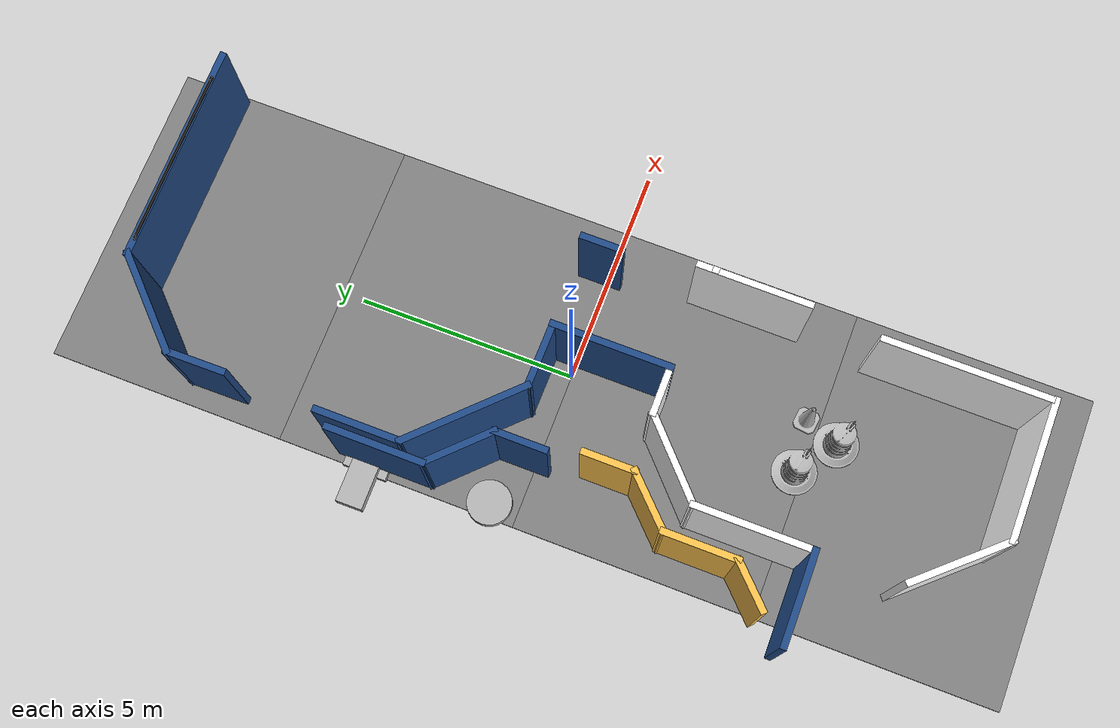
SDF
<sdf version="1.7">
 <world name="default">
  <model name="among_us_world">
   <pose>0.133216 -0.12311 0 0 -0 0</pose>
   <link name="Wall_0">
    <collision name="Wall_0_Collision">
     <geometry><box><size>5 0.15 2.5</size></box></geometry>
     <pose>0 0 1.25 0 -0 0</pose>
    </collision>
    <visual name="Wall_0_Visual">
     <pose>0 0 1.25 0 -0 0</pose>
     <geometry><box><size>5 0.15 2.5</size></box></geometry>
     <material>
      <ambient>0.12549 0.290196 0.529412 1</ambient>
      <diffuse>0.12549 0.290196 0.529412 1</diffuse>
      <specular>0.08 0.08 0.08 1</specular>
      <emissive>0 0 0 1</emissive>
      <pbr>
       <metal>
        <albedo_map>model://asphalt_plane/materials/textures/tarmac.png</albedo_map>
        <roughness>0.85</roughness>
        <metalness>0</metalness>
       </metal>
      </pbr>
     </material>
     <meta><layer>0</layer></meta>
    </visual>
    <pose>0.883234 9.56872 0 0 -0 0</pose>
   </link>
   <link name="Wall_105">
    <collision name="Wall_105_Collision">
     <geometry><box><size>1.25 0.15 2.5</size></box></geometry>
     <pose>0 0 1.25 0 -0 0</pose>
    </collision>
    <visual name="Wall_105_Visual">
     <pose>0 0 1.25 0 -0 0</pose>
     <geometry><box><size>1.25 0.15 2.5</size></box></geometry>
     <material>
      <ambient>0.12549 0.290196 0.529412 1</ambient>
      <diffuse>0.12549 0.290196 0.529412 1</diffuse>
      <specular>0.08 0.08 0.08 1</specular>
      <emissive>0 0 0 1</emissive>
      <pbr>
       <metal>
        <albedo_map>model://among_us_world/materials/textures/ceiling_tiled_32_74_135.jpg</albedo_map>
        <roughness>0.85</roughness>
        <metalness>0</metalness>
       </metal>
      </pbr>
     </material>
     <meta><layer>0</layer></meta>
    </visual>
    <pose>-2.35669 0.402728 0 0 -0 1.5708</pose>
   </link>
   <link name="Wall_106">
    <collision name="Wall_106_Collision">
     <geometry><box><size>1.75 0.15 2.5</size></box></geometry>
     <pose>0 0 1.25 0 -0 0</pose>
    </collision>
    <visual name="Wall_106_Visual">
     <pose>0 0 1.25 0 -0 0</pose>
     <geometry><box><size>1.75 0.15 2.5</size></box></geometry>
     <material>
      <ambient>0.12549 0.290196 0.529412 1</ambient>
      <diffuse>0.12549 0.290196 0.529412 1</diffuse>
      <specular>0.08 0.08 0.08 1</specular>
      <emissive>0 0 0 1</emissive>
      <pbr>
       <metal>
        <albedo_map>model://among_us_world/materials/textures/ceiling_tiled_32_74_135.jpg</albedo_map>
        <roughness>0.85</roughness>
        <metalness>0</metalness>
       </metal>
      </pbr>
     </material>
     <meta><layer>0</layer></meta>
    </visual>
    <pose>-2.92238 1.51841 0 0 -0 2.35619</pose>
   </link>
   <link name="Wall_108">
    <collision name="Wall_108_Collision">
     <geometry><box><size>2.25 0.15 2.5</size></box></geometry>
     <pose>0 0 1.25 0 -0 0</pose>
    </collision>
    <visual name="Wall_108_Visual">
     <pose>0 0 1.25 0 -0 0</pose>
     <geometry><box><size>2.25 0.15 2.5</size></box></geometry>
     <material>
      <ambient>0.12549 0.290196 0.529412 1</ambient>
      <diffuse>0.12549 0.290196 0.529412 1</diffuse>
      <specular>0.08 0.08 0.08 1</specular>
      <emissive>0 0 0 1</emissive>
      <pbr>
       <metal>
        <albedo_map>model://among_us_world/materials/textures/ceiling_tiled_32_74_135.jpg</albedo_map>
        <roughness>0.85</roughness>
        <metalness>0</metalness>
       </metal>
      </pbr>
     </material>
     <meta><layer>0</layer></meta>
    </visual>
    <pose>-3.48806 3.1341 0 0 -0 1.5708</pose>
   </link>
   <link name="Wall_112">
    <collision name="Wall_112_Collision">
     <geometry><box><size>2 0.15 2.5</size></box></geometry>
     <pose>0 0 1.25 0 -0 0</pose>
    </collision>
    <visual name="Wall_112_Visual">
     <pose>0 0 1.25 0 -0 0</pose>
     <geometry><box><size>2 0.15 2.5</size></box></geometry>
     <material>
      <ambient>0.12549 0.290196 0.529412 1</ambient>
      <diffuse>0.12549 0.290196 0.529412 1</diffuse>
      <specular>0.08 0.08 0.08 1</specular>
      <emissive>0 0 0 1</emissive>
      <pbr>
       <metal>
        <albedo_map>model://asphalt_plane/materials/textures/tarmac.png</albedo_map>
        <roughness>0.85</roughness>
        <metalness>0</metalness>
       </metal>
      </pbr>
     </material>
     <meta><layer>0</layer></meta>
    </visual>
    <pose>-3.23806 3.6091 0 0 -0 -1.5708</pose>
   </link>
   <link name="Wall_114">
    <collision name="Wall_114_Collision">
     <geometry><box><size>3 0.15 2.5</size></box></geometry>
     <pose>0 0 1.25 0 -0 0</pose>
    </collision>
    <visual name="Wall_114_Visual">
     <pose>0 0 1.25 0 -0 0</pose>
     <geometry><box><size>3 0.15 2.5</size></box></geometry>
     <material>
      <ambient>0.12549 0.290196 0.529412 1</ambient>
      <diffuse>0.12549 0.290196 0.529412 1</diffuse>
      <specular>0.08 0.08 0.08 1</specular>
      <emissive>0 0 0 1</emissive>
      <pbr>
       <metal>
        <albedo_map>model://asphalt_plane/materials/textures/tarmac.png</albedo_map>
        <roughness>0.85</roughness>
        <metalness>0</metalness>
       </metal>
      </pbr>
     </material>
     <meta><layer>0</layer></meta>
    </visual>
    <pose>-2.23043 1.67647 0 0 -0 -0.785398</pose>
   </link>
   <link name="Wall_115">
    <collision name="Wall_115_Collision">
     <geometry><box><size>1.5655 0.15 2.5</size></box></geometry>
     <pose>0 0 1.25 0 -0 0</pose>
    </collision>
    <visual name="Wall_115_Visual">
     <pose>0 0 1.25 0 -0 0</pose>
     <geometry><box><size>1.5655 0.15 2.5</size></box></geometry>
     <material>
      <ambient>0.12549 0.290196 0.529412 1</ambient>
      <diffuse>0.12549 0.290196 0.529412 1</diffuse>
      <specular>0.08 0.08 0.08 1</specular>
      <emissive>0 0 0 1</emissive>
      <pbr>
       <metal>
        <albedo_map>model://asphalt_plane/materials/textures/tarmac.png</albedo_map>
        <roughness>0.85</roughness>
        <metalness>0</metalness>
       </metal>
      </pbr>
     </material>
     <meta><layer>0</layer></meta>
    </visual>
    <pose>-0.515099 0.662156 0 0 -0 -0.00945</pose>
   </link>
   <link name="Wall_116">
    <collision name="Wall_116_Collision">
     <geometry><box><size>2.75 0.15 2.5</size></box></geometry>
     <pose>0 0 1.25 0 -0 0</pose>
    </collision>
    <visual name="Wall_116_Visual">
     <pose>0 0 1.25 0 -0 0</pose>
     <geometry><box><size>2.75 0.15 2.5</size></box></geometry>
     <material>
      <ambient>0.12549 0.290196 0.529412 1</ambient>
      <diffuse>0.12549 0.290196 0.529412 1</diffuse>
      <specular>0.08 0.08 0.08 1</specular>
      <emissive>0 0 0 1</emissive>
      <pbr>
       <metal>
        <albedo_map>model://asphalt_plane/materials/textures/tarmac.png</albedo_map>
        <roughness>0.85</roughness>
        <metalness>0</metalness>
       </metal>
      </pbr>
     </material>
     <meta><layer>0</layer></meta>
    </visual>
    <pose>0.19261 -0.637844 0 0 -0 -1.5708</pose>
   </link>
   <link name="Wall_147">
    <collision name="Wall_147_Collision">
     <geometry><box><size>1.25 0.15 2.5</size></box></geometry>
     <pose>0 0 1.25 0 -0 0</pose>
    </collision>
    <visual name="Wall_147_Visual">
     <pose>0 0 1.25 0 -0 0</pose>
     <geometry><box><size>1.25 0.15 2.5</size></box></geometry>
     <material>
      <ambient>1 0.764706 0.305882 1</ambient>
      <diffuse>1 0.764706 0.305882 1</diffuse>
      <specular>0.08 0.08 0.08 1</specular>
      <emissive>0 0 0 1</emissive>
      <pbr>
       <metal>
        <albedo_map>model://among_us_world/materials/textures/ceiling_tiled_255_195_78.jpg</albedo_map>
        <roughness>0.85</roughness>
        <metalness>0</metalness>
       </metal>
      </pbr>
     </material>
     <meta><layer>0</layer></meta>
    </visual>
    <pose>-2.11277 -1.45528 0 0 -0 -1.5708</pose>
   </link>
   <link name="Wall_148">
    <collision name="Wall_148_Collision">
     <geometry><box><size>1.5 0.15 2.5</size></box></geometry>
     <pose>0 0 1.25 0 -0 0</pose>
    </collision>
    <visual name="Wall_148_Visual">
     <pose>0 0 1.25 0 -0 0</pose>
     <geometry><box><size>1.5 0.15 2.5</size></box></geometry>
     <material>
      <ambient>1 0.764706 0.305882 1</ambient>
      <diffuse>1 0.764706 0.305882 1</diffuse>
      <specular>0.08 0.08 0.08 1</specular>
      <emissive>0 0 0 1</emissive>
      <pbr>
       <metal>
        <albedo_map>model://among_us_world/materials/textures/ceiling_tiled_255_195_78.jpg</albedo_map>
        <roughness>0.85</roughness>
        <metalness>0</metalness>
       </metal>
      </pbr>
     </material>
     <meta><layer>0</layer></meta>
    </visual>
    <pose>-2.59027 -2.48228 0 0 -0 -2.35672</pose>
   </link>
   <link name="Wall_149">
    <collision name="Wall_149_Collision">
     <geometry><box><size>1.75 0.15 2.5</size></box></geometry>
     <pose>0 0 1.25 0 -0 0</pose>
    </collision>
    <visual name="Wall_149_Visual">
     <pose>0 0 1.25 0 -0 0</pose>
     <geometry><box><size>1.75 0.15 2.5</size></box></geometry>
     <material>
      <ambient>1 0.764706 0.305882 1</ambient>
      <diffuse>1 0.764706 0.305882 1</diffuse>
      <specular>0.08 0.08 0.08 1</specular>
      <emissive>0 0 0 1</emissive>
      <pbr><metal><roughness>0.85</roughness><metalness>0</metalness></metal></pbr>
     </material>
     <meta><layer>0</layer></meta>
    </visual>
    <pose>-3.06777 -3.75928 0 0 -0 -1.5708</pose>
   </link>
   <link name="Wall_150">
    <collision name="Wall_150_Collision">
     <geometry><box><size>1.25 0.15 2.5</size></box></geometry>
     <pose>0 0 1.25 0 -0 0</pose>
    </collision>
    <visual name="Wall_150_Visual">
     <pose>0 0 1.25 0 -0 0</pose>
     <geometry><box><size>1.25 0.15 2.5</size></box></geometry>
     <material>
      <ambient>1 0.764706 0.305882 1</ambient>
      <diffuse>1 0.764706 0.305882 1</diffuse>
      <specular>0.08 0.08 0.08 1</specular>
      <emissive>0 0 0 1</emissive>
      <pbr>
       <metal>
        <albedo_map>model://among_us_world/materials/textures/ceiling_tiled_255_195_78.jpg</albedo_map>
        <roughness>0.85</roughness>
        <metalness>0</metalness>
       </metal>
      </pbr>
     </material>
     <meta><layer>0</layer></meta>
    </visual>
    <pose>-3.45677 -4.94828 0 0 -0 -2.35619</pose>
   </link>
   <link name="Wall_155">
    <collision name="Wall_155_Collision">
     <geometry><box><size>2.16008 0.15 2.5</size></box></geometry>
     <pose>0 0 1.25 0 -0 0</pose>
    </collision>
    <visual name="Wall_155_Visual">
     <pose>0 0 1.25 0 -0 0</pose>
     <geometry><box><size>2.16008 0.15 2.5</size></box></geometry>
     <material>
      <ambient>0.12549 0.290196 0.529412 1</ambient>
      <diffuse>0.12549 0.290196 0.529412 1</diffuse>
      <specular>0.08 0.08 0.08 1</specular>
      <emissive>0 0 0 1</emissive>
      <pbr>
       <metal>
        <albedo_map>model://asphalt_plane/materials/textures/tarmac.png</albedo_map>
        <roughness>0.85</roughness>
        <metalness>0</metalness>
       </metal>
      </pbr>
     </material>
     <meta><layer>0</layer></meta>
    </visual>
    <pose>-3.35065 -5.9463 0 0 -0 0.008937</pose>
   </link>
   <link name="Wall_156">
    <collision name="Wall_156_Collision">
     <geometry><box><size>2.75 0.15 2.5</size></box></geometry>
     <pose>0 0 1.25 0 -0 0</pose>
    </collision>
    <visual name="Wall_156_Visual">
     <pose>0 0 1.25 0 -0 0</pose>
     <geometry><box><size>2.75 0.15 2.5</size></box></geometry>
     <material>
      <ambient>1 1 1 1</ambient>
      <diffuse>1 1 1 1</diffuse>
      <specular>0.08 0.08 0.08 1</specular>
      <emissive>0 0 0 1</emissive>
      <pbr>
       <metal>
        <albedo_map>model://among_us_world/materials/textures/ceiling_tiled_85_87_83.jpg</albedo_map>
        <roughness>0.85</roughness>
        <metalness>0</metalness>
       </metal>
      </pbr>
     </material>
     <meta><layer>0</layer></meta>
    </visual>
    <pose>-2.34553 -4.63732 0 0 -0 1.5708</pose>
   </link>
   <link name="Wall_184">
    <collision name="Wall_184_Collision">
     <geometry><box><size>1 0.15 2.5</size></box></geometry>
     <pose>0 0 1.25 0 -0 0</pose>
    </collision>
    <visual name="Wall_184_Visual">
     <pose>0 0 1.25 0 -0 0</pose>
     <geometry><box><size>1 0.15 2.5</size></box></geometry>
     <material>
      <ambient>0.12549 0.290196 0.529412 1</ambient>
      <diffuse>0.12549 0.290196 0.529412 1</diffuse>
      <specular>0.08 0.08 0.08 1</specular>
      <emissive>0 0 0 1</emissive>
      <pbr>
       <metal>
        <albedo_map>model://asphalt_plane/materials/textures/tarmac.png</albedo_map>
        <roughness>0.85</roughness>
        <metalness>0</metalness>
       </metal>
      </pbr>
     </material>
     <meta><layer>0</layer></meta>
    </visual>
    <pose>2.21722 0.328062 0 0 -0 -1.5708</pose>
   </link>
   <link name="Wall_195">
    <collision name="Wall_195_Collision">
     <geometry><box><size>2.43279 0.15 2.5</size></box></geometry>
     <pose>0 0 1.25 0 -0 0</pose>
    </collision>
    <visual name="Wall_195_Visual">
     <pose>0 0 1.25 0 -0 0</pose>
     <geometry><box><size>2.43279 0.15 2.5</size></box></geometry>
     <material>
      <ambient>1 1 1 1</ambient>
      <diffuse>1 1 1 1</diffuse>
      <specular>0.08 0.08 0.08 1</specular>
      <emissive>0 0 0 1</emissive>
      <pbr>
       <metal>
        <albedo_map>model://among_us_world/materials/textures/ceiling_tiled_85_87_83.jpg</albedo_map>
        <roughness>0.85</roughness>
        <metalness>0</metalness>
       </metal>
      </pbr>
     </material>
     <meta><layer>0</layer></meta>
    </visual>
    <pose>-1.52341 -8.72218 0 0 -0 -0.835926</pose>
   </link>
   <link name="Wall_200">
    <collision name="Wall_200_Collision">
     <geometry><box><size>3.75 0.15 2.5</size></box></geometry>
     <pose>0 0 1.25 0 -0 0</pose>
    </collision>
    <visual name="Wall_200_Visual">
     <pose>0 0 1.25 0 -0 0</pose>
     <geometry><box><size>3.75 0.15 2.5</size></box></geometry>
     <material>
      <ambient>1 1 1 1</ambient>
      <diffuse>1 1 1 1</diffuse>
      <specular>0.08 0.08 0.08 1</specular>
      <emissive>0 0 0 1</emissive>
      <pbr>
       <metal>
        <albedo_map>model://among_us_world/materials/textures/ceiling_tiled_85_87_83.jpg</albedo_map>
        <roughness>0.85</roughness>
        <metalness>0</metalness>
       </metal>
      </pbr>
     </material>
     <meta><layer>0</layer></meta>
    </visual>
    <pose>2.32919 -7.66138 0 0 -0 1.5708</pose>
   </link>
   <link name="Wall_202">
    <collision name="Wall_202_Collision">
     <geometry><box><size>3.25 0.15 2.5</size></box></geometry>
     <pose>0 0 1.25 0 -0 0</pose>
    </collision>
    <visual name="Wall_202_Visual">
     <pose>0 0 1.25 0 -0 0</pose>
     <geometry><box><size>3.25 0.15 2.5</size></box></geometry>
     <material>
      <ambient>1 1 1 1</ambient>
      <diffuse>1 1 1 1</diffuse>
      <specular>0.08 0.08 0.08 1</specular>
      <emissive>0 0 0 1</emissive>
      <pbr>
       <metal>
        <albedo_map>model://among_us_world/materials/textures/ceiling_tiled_255_255_255.jpg</albedo_map>
        <roughness>0.85</roughness>
        <metalness>0</metalness>
       </metal>
      </pbr>
     </material>
     <meta><layer>0</layer></meta>
    </visual>
    <pose>0.791885 -9.56227 0 0 -0 0</pose>
   </link>
   <link name="Wall_204">
    <collision name="Wall_204_Collision">
     <geometry><box><size>1.18966 0.15 2.5</size></box></geometry>
     <pose>0 0 1.25 0 -0 0</pose>
    </collision>
    <visual name="Wall_204_Visual">
     <pose>0 0 1.25 0 -0 0</pose>
     <geometry><box><size>1.18966 0.15 2.5</size></box></geometry>
     <material>
      <ambient>1 1 1 1</ambient>
      <diffuse>1 1 1 1</diffuse>
      <specular>0.08 0.08 0.08 1</specular>
      <emissive>0 0 0 1</emissive>
      <pbr>
       <metal>
        <albedo_map>model://among_us_world/materials/textures/ceiling_tiled_85_87_83.jpg</albedo_map>
        <roughness>0.85</roughness>
        <metalness>0</metalness>
       </metal>
      </pbr>
     </material>
     <meta><layer>0</layer></meta>
    </visual>
    <pose>-0.32722 -1.93701 0 0 -0 3.14</pose>
   </link>
   <link name="Wall_206">
    <collision name="Wall_206_Collision">
     <geometry><box><size>2.20149 0.15 2.5</size></box></geometry>
     <pose>0 0 1.25 0 -0 0</pose>
    </collision>
    <visual name="Wall_206_Visual">
     <pose>0 0 1.25 0 -0 0</pose>
     <geometry><box><size>2.20149 0.15 2.5</size></box></geometry>
     <material>
      <ambient>1 1 1 1</ambient>
      <diffuse>1 1 1 1</diffuse>
      <specular>0.08 0.08 0.08 1</specular>
      <emissive>0 0 0 1</emissive>
      <pbr>
       <metal>
        <albedo_map>model://among_us_world/materials/textures/ceiling_tiled_85_87_83.jpg</albedo_map>
        <roughness>0.85</roughness>
        <metalness>0</metalness>
       </metal>
      </pbr>
     </material>
     <meta><layer>0</layer></meta>
    </visual>
    <pose>-1.59629 -2.63675 0 0 -0 0.751837</pose>
   </link>
   <link name="Wall_211">
    <collision name="Wall_211_Collision">
     <geometry><box><size>0.15 0.15 2.5</size></box></geometry>
     <pose>0 0 1.25 0 -0 0</pose>
    </collision>
    <visual name="Wall_211_Visual">
     <pose>0 0 1.25 0 -0 0</pose>
     <geometry><box><size>0.15 0.15 2.5</size></box></geometry>
     <material>
      <ambient>1 1 1 1</ambient>
      <diffuse>1 1 1 1</diffuse>
      <specular>0.08 0.08 0.08 1</specular>
      <emissive>0 0 0 1</emissive>
      <pbr><metal><roughness>0.85</roughness><metalness>0</metalness></metal></pbr>
     </material>
     <meta><layer>0</layer></meta>
    </visual>
    <pose>2.50201 -2.11327 0 0 -0 0</pose>
   </link>
   <link name="Wall_217">
    <collision name="Wall_217_Collision">
     <geometry><box><size>2.60674 0.15 2.5</size></box></geometry>
     <pose>0 0 1.25 0 -0 0</pose>
    </collision>
    <visual name="Wall_217_Visual">
     <pose>0 0 1.25 0 -0 0</pose>
     <geometry><box><size>2.60674 0.15 2.5</size></box></geometry>
     <material>
      <ambient>1 1 1 1</ambient>
      <diffuse>1 1 1 1</diffuse>
      <specular>0.08 0.08 0.08 1</specular>
      <emissive>0 0 0 1</emissive>
      <pbr>
       <metal>
        <albedo_map>model://among_us_world/materials/textures/ceiling_tiled_46_52_54.jpg</albedo_map>
        <roughness>0.85</roughness>
        <metalness>0</metalness>
       </metal>
      </pbr>
     </material>
     <meta><layer>0</layer></meta>
    </visual>
    <pose>2.49237 -2.9849 0 0 -0 -1.5739</pose>
   </link>
   <link name="Wall_29">
    <collision name="Wall_29_Collision">
     <geometry><box><size>2.5 0.15 2.5</size></box></geometry>
     <pose>0 0 1.25 0 -0 0</pose>
    </collision>
    <visual name="Wall_29_Visual">
     <pose>0 0 1.25 0 -0 0</pose>
     <geometry><box><size>2.5 0.15 2.5</size></box></geometry>
     <material>
      <ambient>0.12549 0.290196 0.529412 1</ambient>
      <diffuse>0.12549 0.290196 0.529412 1</diffuse>
      <specular>0.08 0.08 0.08 1</specular>
      <emissive>0 0 0 1</emissive>
      <pbr>
       <metal>
        <albedo_map>model://asphalt_plane/materials/textures/tarmac.png</albedo_map>
        <roughness>0.85</roughness>
        <metalness>0</metalness>
       </metal>
      </pbr>
     </material>
     <meta><layer>0</layer></meta>
    </visual>
    <pose>-2.37241 8.73794 0 0 -0 -2.35611</pose>
   </link>
   <link name="Wall_30">
    <collision name="Wall_30_Collision">
     <geometry><box><size>1.4062 0.15 2.5</size></box></geometry>
     <pose>0 0 1.25 0 -0 0</pose>
    </collision>
    <visual name="Wall_30_Visual">
     <pose>0 0 1.25 0 -0 0</pose>
     <geometry><box><size>1.4062 0.15 2.5</size></box></geometry>
     <material>
      <ambient>0.12549 0.290196 0.529412 1</ambient>
      <diffuse>0.12549 0.290196 0.529412 1</diffuse>
      <specular>0.08 0.08 0.08 1</specular>
      <emissive>0 0 0 1</emissive>
      <pbr>
       <metal>
        <albedo_map>model://asphalt_plane/materials/textures/tarmac.png</albedo_map>
        <roughness>0.85</roughness>
        <metalness>0</metalness>
       </metal>
      </pbr>
     </material>
     <meta><layer>0</layer></meta>
    </visual>
    <pose>-3.19527 7.27912 0 0 -0 -1.55841</pose>
   </link>
   <static>1</static>
  </model>
  <model name="Construction Barrel">
   <static>1</static>
   <link name="link">
    <inertial>
     <pose>0 0 0.4 0 -0 0</pose>
     <mass>500</mass>
     <inertia><ixx>51.2096</ixx><iyy>51.2096</iyy><izz>25</izz><ixy>0</ixy><ixz>0</ixz><iyz>0</iyz></inertia>
    </inertial>
    <collision name="collision">
     <pose>0 0 0.32 0 0 0</pose>
     <geometry><cylinder><radius>0.16</radius><length>0.64</length></cylinder></geometry>
    </collision>
    <visual name="visual">
     <geometry><mesh><uri>model://construction_barrel/meshes/construction_barrel.dae</uri></mesh></geometry>
    </visual>
   </link>
   <pose>-0.274787 -5.3139 0.00999 1e-06 -0 -0.237848</pose>
  </model>
  <model name="Construction Barrel_clone">
   <static>1</static>
   <link name="link">
    <inertial>
     <pose>0 0 0.4 0 -0 0</pose>
     <mass>500</mass>
     <inertia><ixx>51.2096</ixx><iyy>51.2096</iyy><izz>25</izz><ixy>0</ixy><ixz>0</ixz><iyz>0</iyz></inertia>
    </inertial>
    <collision name="collision">
     <pose>0 0 0.32 0 0 0</pose>
     <geometry><cylinder><radius>0.16</radius><length>0.64</length></cylinder></geometry>
    </collision>
    <visual name="visual">
     <geometry><mesh><uri>model://construction_barrel/meshes/construction_barrel.dae</uri></mesh></geometry>
    </visual>
   </link>
   <pose>0.623823 -5.9827 0.009999 3e-06 -8e-06 -0.35048</pose>
  </model>
  <model name="asphalt_tile_00_02">
   <static>1</static>
   <pose>0.000 -8.250 -0.020 0 -0 0</pose>
   <link name="link">
    <collision name="collision"><geometry><box><size>7.200 5.500 0.040</size></box></geometry></collision>
    <visual name="visual">
     <cast_shadows>0</cast_shadows>
     <geometry><box><size>7.200 5.500 0.040</size></box></geometry>
     <material>
      <ambient>0.5 0.5 0.5 1</ambient>
      <diffuse>0.5 0.5 0.5 1</diffuse>
      <specular>0.2 0.2 0.2 1</specular>
      <emissive>0 0 0 1</emissive>
      <pbr>
       <metal>
        <albedo_map>model://asphalt_plane/materials/textures/tarmac.png</albedo_map>
        <roughness>0.85</roughness>
        <metalness>0</metalness>
       </metal>
      </pbr>
     </material>
    </visual>
   </link>
  </model>
  <model name="asphalt_tile_01_02">
   <static>1</static>
   <pose>0.000 -2.750 -0.020 0 -0 0</pose>
   <link name="link">
    <collision name="collision"><geometry><box><size>7.200 5.500 0.040</size></box></geometry></collision>
    <visual name="visual">
     <cast_shadows>0</cast_shadows>
     <geometry><box><size>7.200 5.500 0.040</size></box></geometry>
     <material>
      <ambient>0.5 0.5 0.5 1</ambient>
      <diffuse>0.5 0.5 0.5 1</diffuse>
      <specular>0.2 0.2 0.2 1</specular>
      <emissive>0 0 0 1</emissive>
      <pbr>
       <metal>
        <albedo_map>model://asphalt_plane/materials/textures/tarmac.png</albedo_map>
        <roughness>0.85</roughness>
        <metalness>0</metalness>
       </metal>
      </pbr>
     </material>
    </visual>
   </link>
  </model>
  <model name="asphalt_tile_02_02">
   <static>1</static>
   <pose>0.000 2.750 -0.020 0 -0 0</pose>
   <link name="link">
    <collision name="collision"><geometry><box><size>7.200 5.500 0.040</size></box></geometry></collision>
    <visual name="visual">
     <cast_shadows>0</cast_shadows>
     <geometry><box><size>7.200 5.500 0.040</size></box></geometry>
     <material>
      <ambient>0.5 0.5 0.5 1</ambient>
      <diffuse>0.5 0.5 0.5 1</diffuse>
      <specular>0.2 0.2 0.2 1</specular>
      <emissive>0 0 0 1</emissive>
      <pbr>
       <metal>
        <albedo_map>model://asphalt_plane/materials/textures/tarmac.png</albedo_map>
        <roughness>0.85</roughness>
        <metalness>0</metalness>
       </metal>
      </pbr>
     </material>
    </visual>
   </link>
  </model>
  <model name="asphalt_tile_03_02">
   <static>1</static>
   <pose>0.000 8.250 -0.020 0 -0 0</pose>
   <link name="link">
    <collision name="collision"><geometry><box><size>7.200 5.500 0.040</size></box></geometry></collision>
    <visual name="visual">
     <cast_shadows>0</cast_shadows>
     <geometry><box><size>7.200 5.500 0.040</size></box></geometry>
     <material>
      <ambient>0.5 0.5 0.5 1</ambient>
      <diffuse>0.5 0.5 0.5 1</diffuse>
      <specular>0.2 0.2 0.2 1</specular>
      <emissive>0 0 0 1</emissive>
      <pbr>
       <metal>
        <albedo_map>model://asphalt_plane/materials/textures/tarmac.png</albedo_map>
        <roughness>0.85</roughness>
        <metalness>0</metalness>
       </metal>
      </pbr>
     </material>
    </visual>
   </link>
  </model>
  <model name="robotech_lab_picture">
   <static>1</static>
   <pose>0.883 9.455 1.45 0 -0 0</pose>
   <link name="link">
    <visual name="photo">
     <pose>0 -0.018 0 0 -0 0</pose>
     <geometry><box><size>3.80 0.030 2.1375</size></box></geometry>
     <material>
      <ambient>1 1 1 1</ambient>
      <diffuse>1 1 1 1</diffuse>
      <specular>0.02 0.02 0.02 1</specular>
      <emissive>0.12 0.12 0.12 1</emissive>
      <pbr>
       <metal>
        <albedo_map>model://among_us_world/materials/textures/robotech_lab_picture.jpg</albedo_map>
        <roughness>0.5</roughness>
        <metalness>0</metalness>
       </metal>
      </pbr>
     </material>
    </visual>
    <visual name="frame_top">
     <pose>0 -0.040 1.10875 0 -0 0</pose>
     <geometry><box><size>3.98 0.045 0.08</size></box></geometry>
     <material>
      <ambient>0.02 0.02 0.02 1</ambient>
      <diffuse>0.02 0.02 0.02 1</diffuse>
      <specular>0.02 0.02 0.02 1</specular>
     </material>
    </visual>
    <visual name="frame_bottom">
     <pose>0 -0.040 -1.10875 0 -0 0</pose>
     <geometry><box><size>3.98 0.045 0.08</size></box></geometry>
     <material>
      <ambient>0.02 0.02 0.02 1</ambient>
      <diffuse>0.02 0.02 0.02 1</diffuse>
      <specular>0.02 0.02 0.02 1</specular>
     </material>
    </visual>
    <visual name="frame_left">
     <pose>-1.94 -0.040 0 0 -0 0</pose>
     <geometry><box><size>0.08 0.045 2.30</size></box></geometry>
     <material>
      <ambient>0.02 0.02 0.02 1</ambient>
      <diffuse>0.02 0.02 0.02 1</diffuse>
      <specular>0.02 0.02 0.02 1</specular>
     </material>
    </visual>
    <visual name="frame_right">
     <pose>1.94 -0.040 0 0 -0 0</pose>
     <geometry><box><size>0.08 0.045 2.30</size></box></geometry>
     <material>
      <ambient>0.02 0.02 0.02 1</ambient>
      <diffuse>0.02 0.02 0.02 1</diffuse>
      <specular>0.02 0.02 0.02 1</specular>
     </material>
    </visual>
   </link>
  </model>
  <model name="bed_clone_0">
   <link name="link_1">
    <inertial>
     <mass>0.166557</mass>
     <inertia>
      <ixx>0.00618823</ixx>
      <ixy>0</ixy>
      <ixz>0</ixz>
      <iyy>0.0149173</iyy>
      <iyz>0</iyz>
      <izz>0.0190304</izz>
     </inertia>
    </inertial>
    <pose>0.268517 -0.007523 0.053425 0 -0 0</pose>
    <visual name="visual">
     <geometry><box><size>1 0.609172 0.273416</size></box></geometry>
     <material>
      <ambient>0.7 0.7 0.7 1</ambient>
      <diffuse>0.7 0.7 0.7 1</diffuse>
      <specular>0.08 0.08 0.08 1</specular>
      <emissive>0 0 0 1</emissive>
      <pbr><metal><roughness>0.8</roughness><metalness>0</metalness></metal></pbr>
     </material>
    </visual>
    <collision name="collision">
     <geometry><box><size>1 0.609172 0.273416</size></box></geometry>
     <surface>
      <friction>
       <ode><mu>1</mu><mu2>1</mu2><fdir1>0 0 0</fdir1><slip1>0</slip1><slip2>0</slip2></ode>
       <torsional>
        <coefficient>1</coefficient>
        <patch_radius>0</patch_radius>
        <surface_radius>0</surface_radius>
        <use_patch_radius>1</use_patch_radius>
        <ode><slip>0</slip></ode>
       </torsional>
      </friction>
      <bounce><restitution_coefficient>0</restitution_coefficient><threshold>1e+06</threshold></bounce>
      <contact>
       <collide_without_contact>0</collide_without_contact>
       <collide_without_contact_bitmask>1</collide_without_contact_bitmask>
       <collide_bitmask>1</collide_bitmask>
       <ode>
        <soft_cfm>0</soft_cfm>
        <soft_erp>0.2</soft_erp>
        <kp>1e+13</kp>
        <kd>1</kd>
        <max_vel>0.01</max_vel>
        <min_depth>0</min_depth>
       </ode>
       <bullet>
        <split_impulse>1</split_impulse>
        <split_impulse_penetration_threshold>-0.01</split_impulse_penetration_threshold>
        <soft_cfm>0</soft_cfm>
        <soft_erp>0.2</soft_erp>
        <kp>1e+13</kp>
        <kd>1</kd>
       </bullet>
      </contact>
     </surface>
    </collision>
   </link>
   <link name="link_2">
    <inertial>
     <mass>0.00661892</mass>
     <inertia>
      <ixx>3.651e-05</ixx>
      <ixy>0</ixy>
      <ixz>0</ixz>
      <iyy>3.722e-05</iyy>
      <iyz>0</iyz>
      <izz>4.631e-05</izz>
     </inertia>
    </inertial>
    <pose>-0.144333 -0.400103 -0.02691 0 -0 0</pose>
    <visual name="visual">
     <geometry><box><size>0.206441 0.203314 0.157681</size></box></geometry>
     <material>
      <ambient>0.7 0.7 0.7 1</ambient>
      <diffuse>0.7 0.7 0.7 1</diffuse>
      <specular>0.08 0.08 0.08 1</specular>
      <emissive>0 0 0 1</emissive>
      <pbr><metal><roughness>0.8</roughness><metalness>0</metalness></metal></pbr>
     </material>
    </visual>
    <collision name="collision">
     <geometry><box><size>0.206441 0.203314 0.157681</size></box></geometry>
     <surface>
      <friction>
       <ode><mu>1</mu><mu2>1</mu2><fdir1>0 0 0</fdir1><slip1>0</slip1><slip2>0</slip2></ode>
       <torsional>
        <coefficient>1</coefficient>
        <patch_radius>0</patch_radius>
        <surface_radius>0</surface_radius>
        <use_patch_radius>1</use_patch_radius>
        <ode><slip>0</slip></ode>
       </torsional>
      </friction>
      <bounce><restitution_coefficient>0</restitution_coefficient><threshold>1e+06</threshold></bounce>
      <contact>
       <collide_without_contact>0</collide_without_contact>
       <collide_without_contact_bitmask>1</collide_without_contact_bitmask>
       <collide_bitmask>1</collide_bitmask>
       <ode>
        <soft_cfm>0</soft_cfm>
        <soft_erp>0.2</soft_erp>
        <kp>1e+13</kp>
        <kd>1</kd>
        <max_vel>0.01</max_vel>
        <min_depth>0</min_depth>
       </ode>
       <bullet>
        <split_impulse>1</split_impulse>
        <split_impulse_penetration_threshold>-0.01</split_impulse_penetration_threshold>
        <soft_cfm>0</soft_cfm>
        <soft_erp>0.2</soft_erp>
        <kp>1e+13</kp>
        <kd>1</kd>
       </bullet>
      </contact>
     </surface>
    </collision>
   </link>
   <link name="link_2_clone">
    <inertial>
     <mass>0.00661892</mass>
     <inertia>
      <ixx>3.651e-05</ixx>
      <ixy>0</ixy>
      <ixz>0</ixz>
      <iyy>3.722e-05</iyy>
      <iyz>0</iyz>
      <izz>4.631e-05</izz>
     </inertia>
    </inertial>
    <pose>-0.124183 0.407627 -0.026515 0 -0 0</pose>
    <visual name="visual">
     <geometry><box><size>0.206441 0.203314 0.157681</size></box></geometry>
     <material>
      <ambient>0.7 0.7 0.7 1</ambient>
      <diffuse>0.7 0.7 0.7 1</diffuse>
      <specular>0.08 0.08 0.08 1</specular>
      <emissive>0 0 0 1</emissive>
      <pbr><metal><roughness>0.8</roughness><metalness>0</metalness></metal></pbr>
     </material>
    </visual>
    <collision name="collision">
     <geometry><box><size>0.206441 0.203314 0.157681</size></box></geometry>
     <surface>
      <friction>
       <ode><mu>1</mu><mu2>1</mu2><fdir1>0 0 0</fdir1><slip1>0</slip1><slip2>0</slip2></ode>
       <torsional>
        <coefficient>1</coefficient>
        <patch_radius>0</patch_radius>
        <surface_radius>0</surface_radius>
        <use_patch_radius>1</use_patch_radius>
        <ode><slip>0</slip></ode>
       </torsional>
      </friction>
      <bounce><restitution_coefficient>0</restitution_coefficient><threshold>1e+06</threshold></bounce>
      <contact>
       <collide_without_contact>0</collide_without_contact>
       <collide_without_contact_bitmask>1</collide_without_contact_bitmask>
       <collide_bitmask>1</collide_bitmask>
       <ode>
        <soft_cfm>0</soft_cfm>
        <soft_erp>0.2</soft_erp>
        <kp>1e+13</kp>
        <kd>1</kd>
        <max_vel>0.01</max_vel>
        <min_depth>0</min_depth>
       </ode>
       <bullet>
        <split_impulse>1</split_impulse>
        <split_impulse_penetration_threshold>-0.01</split_impulse_penetration_threshold>
        <soft_cfm>0</soft_cfm>
        <soft_erp>0.2</soft_erp>
        <kp>1e+13</kp>
        <kd>1</kd>
       </bullet>
      </contact>
     </surface>
    </collision>
   </link>
   <static>1</static>
   <pose>-3.68143 3.45279 0.093275 2.7e-05 0 -3.13537</pose>
  </model>
  <model name="Construction Cone_clone">
   <static>1</static>
   <link name="link">
    <collision name="collision">
     <pose>0 0 0.17 0 0 0</pose>
     <geometry><cylinder><radius>0.11</radius><length>0.34</length></cylinder></geometry>
    </collision>
    <visual name="visual">
     <geometry>
      <mesh><scale>10 10 10</scale><uri>model://construction_cone/meshes/construction_cone.dae</uri></mesh>
     </geometry>
    </visual>
    <inertial>
     <inertia><ixx>1</ixx><ixy>0</ixy><ixz>0</ixz><iyy>1</iyy><iyz>0</iyz><izz>1</izz></inertia>
     <mass>1</mass>
    </inertial>
   </link>
   <pose>0.909638 -5.19132 0.01 -0 -0 -1.69187</pose>
  </model>
  <model name="unit_cylinder_0">
   <pose>-3.29507 0.643046 0.110467 -3e-06 -3e-06 0</pose>
   <link name="link">
    <inertial>
     <mass>1</mass>
     <inertia><ixx>0.145833</ixx><ixy>0</ixy><ixz>0</ixz><iyy>0.145833</iyy><iyz>0</iyz><izz>0.125</izz></inertia>
    </inertial>
    <collision name="collision">
     <geometry><cylinder><radius>0.5</radius><length>0.200944</length></cylinder></geometry>
    </collision>
    <visual name="visual">
     <geometry><cylinder><radius>0.5</radius><length>0.200944</length></cylinder></geometry>
     <material>
      <ambient>0.7 0.7 0.7 1</ambient>
      <diffuse>0.7 0.7 0.7 1</diffuse>
      <specular>0.08 0.08 0.08 1</specular>
      <emissive>0 0 0 1</emissive>
      <pbr><metal><roughness>0.8</roughness><metalness>0</metalness></metal></pbr>
     </material>
    </visual>
   </link>
  </model>
 </world>
</sdf>
